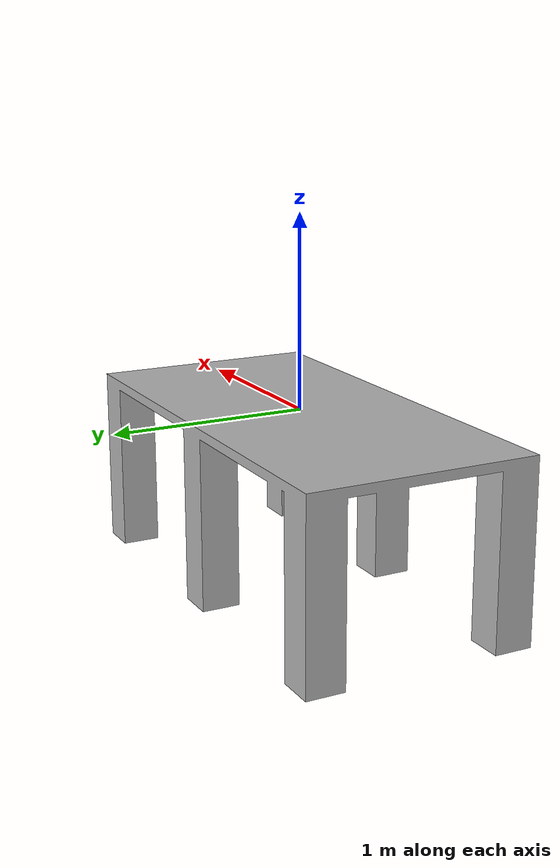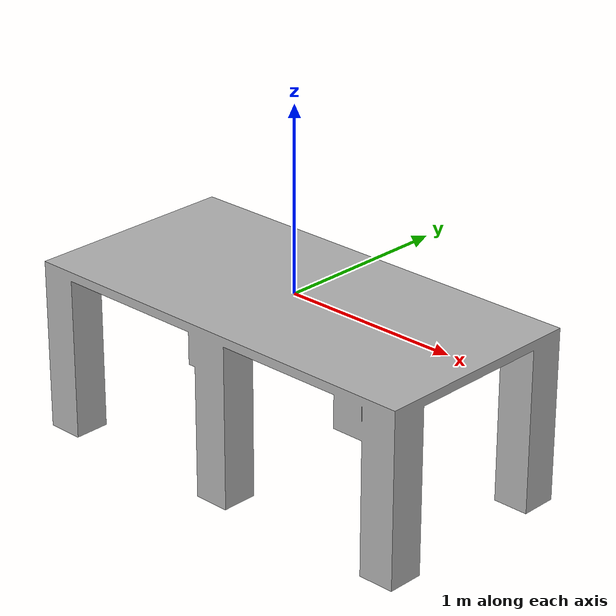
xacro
<?xml version="1.0" ?>
<robot name="fixture_table" xmlns:xacro="http://www.ros.org/wiki/xacro">

<xacro:include filename="$(find fixture_table_description)/urdf/materials.xacro" />
<xacro:include filename="$(find fixture_table_description)/urdf/fixture_table.trans" />
<xacro:include filename="$(find fixture_table_description)/urdf/fixture_table.gazebo" />
<link name="base_link">
  <inertial>
    <origin xyz="0.0 0.0 -0.31" rpy="0 0 0"/>
    <mass value="2825.9999999999995"/>
    <inertia ixx="832.9164" iyy="2183.7444" izz="2481.228" ixy="0.0" iyz="0.0" ixz="0.0"/>
  </inertial>
  <visual>
    <origin xyz="0 0 0" rpy="0 0 0"/>
    <geometry>
      <mesh filename="file://$(find fixture_table_description)/meshes/base_link.stl" scale="0.001 0.001 0.001"/>
    </geometry>
    <material name="silver"/>
  </visual>
  <collision>
    <origin xyz="0 0 0" rpy="0 0 0"/>
    <geometry>
      <mesh filename="file://$(find fixture_table_description)/meshes/base_link.stl" scale="0.001 0.001 0.001"/>
    </geometry>
  </collision>
</link>

</robot>

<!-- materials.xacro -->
<robot name="fixture_table" xmlns:xacro="http://www.ros.org/wiki/xacro" >

<material name="silver">
  <color rgba="0.700 0.700 0.700 1.000"/>
</material>

</robot>

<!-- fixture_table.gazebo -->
<robot name="fixture_table" xmlns:xacro="http://www.ros.org/wiki/xacro" >

<xacro:property name="body_color" value="Gazebo/Silver" />

<gazebo>
  <plugin name="control" filename="libgazebo_ros_control.so"/>
</gazebo>
<gazebo reference="base_link">
  <material>${body_color}</material>
  <mu1>0.2</mu1>
  <mu2>0.2</mu2>
  <self_collide>true</self_collide>
  <gravity>true</gravity>
</gazebo>

</robot>
